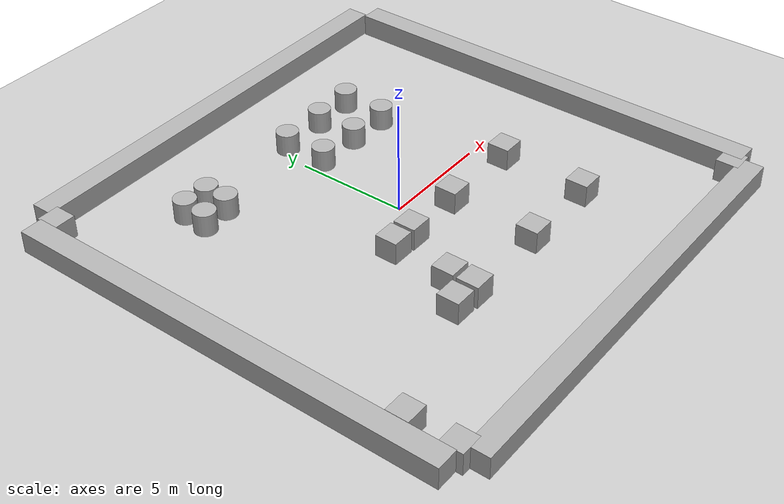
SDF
<?xml version="1.0"?>
<sdf version='1.10'>
  <world name='empty'>
    <physics name='1ms' type='ignored'>
      <max_step_size>0.001</max_step_size>
      <real_time_factor>1</real_time_factor>
      <real_time_update_rate>1000</real_time_update_rate>
    </physics>

    <plugin
      filename="gz-sim-physics-system"
      name="gz::sim::systems::Physics">
    </plugin>
    <plugin
      filename="gz-sim-user-commands-system"
      name="gz::sim::systems::UserCommands">
    </plugin>
    <plugin
      filename="gz-sim-scene-broadcaster-system"
      name="gz::sim::systems::SceneBroadcaster">
    </plugin>
    <plugin
      filename="gz-sim-sensors-system"
      name="gz::sim::systems::Sensors">
      <render_engine>ogre2</render_engine>
    </plugin>
    <plugin
      filename="gz-sim-imu-system"
      name="gz::sim::systems::Imu">
    </plugin>

    <gravity>0 0 -9.8000000000000007</gravity>
    <magnetic_field>5.5644999999999998e-06 2.2875799999999999e-05 -4.2388400000000002e-05</magnetic_field>
    <atmosphere type='adiabatic'/>
    <scene>
      <ambient>0.400000006 0.400000006 0.400000006 1</ambient>
      <background>0.699999988 0.699999988 0.699999988 1</background>
      <shadows>true</shadows>
    </scene>
    <model name='ground_plane'>
      <static>true</static>
      <link name='link'>
        <collision name='collision'>
          <geometry>
            <plane>
              <normal>0 0 1</normal>
              <size>100 100</size>
            </plane>
          </geometry>
          <surface>
            <friction>
              <ode/>
            </friction>
            <bounce/>
            <contact/>
          </surface>
        </collision>
        <visual name='visual'>
          <geometry>
            <plane>
              <normal>0 0 1</normal>
              <size>100 100</size>
            </plane>
          </geometry>
          <material>
            <ambient>0.800000012 0.800000012 0.800000012 1</ambient>
            <diffuse>0.800000012 0.800000012 0.800000012 1</diffuse>
            <specular>0.800000012 0.800000012 0.800000012 1</specular>
          </material>
        </visual>
        <pose>0 0 0 0 0 0</pose>
        <inertial>
          <pose>0 0 0 0 0 0</pose>
          <mass>1</mass>
          <inertia>
            <ixx>1</ixx>
            <ixy>0</ixy>
            <ixz>0</ixz>
            <iyy>1</iyy>
            <iyz>0</iyz>
            <izz>1</izz>
          </inertia>
        </inertial>
        <enable_wind>false</enable_wind>
      </link>
      <pose>0 0 0 0 0 0</pose>
      <self_collide>false</self_collide>
    </model>
    <model name='box'>
      <pose>10.804900169372559 -0.059269551187753677 0.5 0 0 0</pose>
      <link name='box_link'>
        <inertial>
          <inertia>
            <ixx>0.16666</ixx>
            <ixy>0</ixy>
            <ixz>0</ixz>
            <iyy>0.16666</iyy>
            <iyz>0</iyz>
            <izz>0.16666</izz>
          </inertia>
          <mass>1</mass>
          <pose>0 0 0 0 0 0</pose>
        </inertial>
        <collision name='box_collision'>
          <geometry>
            <box>
              <size>1 20 1</size>
            </box>
          </geometry>
          <surface>
            <friction>
              <ode/>
            </friction>
            <bounce/>
            <contact/>
          </surface>
        </collision>
        <visual name='box_visual'>
          <geometry>
            <box>
              <size>1 20 1</size>
            </box>
          </geometry>
          <material>
            <ambient>0.300000012 0.300000012 0.300000012 1</ambient>
            <diffuse>0.699999988 0.699999988 0.699999988 1</diffuse>
            <specular>1 1 1 1</specular>
          </material>
        </visual>
        <pose>0 0 0 0 0 0</pose>
        <enable_wind>false</enable_wind>
      </link>
      <static>false</static>
      <self_collide>false</self_collide>
    </model>
    <model name='box_0'>
      <pose>0.44352701306343079 10.491442680358887 0.5 0 0 0</pose>
      <link name='box_link'>
        <inertial>
          <inertia>
            <ixx>0.16666</ixx>
            <ixy>0</ixy>
            <ixz>0</ixz>
            <iyy>0.16666</iyy>
            <iyz>0</iyz>
            <izz>0.16666</izz>
          </inertia>
          <mass>1</mass>
          <pose>0 0 0 0 0 0</pose>
        </inertial>
        <collision name='box_collision'>
          <geometry>
            <box>
              <size>20 1 1</size>
            </box>
          </geometry>
          <surface>
            <friction>
              <ode/>
            </friction>
            <bounce/>
            <contact/>
          </surface>
        </collision>
        <visual name='box_visual'>
          <geometry>
            <box>
              <size>20 1 1</size>
            </box>
          </geometry>
          <material>
            <ambient>0.300000012 0.300000012 0.300000012 1</ambient>
            <diffuse>0.699999988 0.699999988 0.699999988 1</diffuse>
            <specular>1 1 1 1</specular>
          </material>
        </visual>
        <pose>0 0 0 0 0 0</pose>
        <enable_wind>false</enable_wind>
      </link>
      <static>false</static>
      <self_collide>false</self_collide>
    </model>
    <model name='box_1'>
      <pose>-10.50529956817627 0.023616543039679527 0.5 0 0 0</pose>
      <link name='box_link'>
        <inertial>
          <inertia>
            <ixx>0.16666</ixx>
            <ixy>0</ixy>
            <ixz>0</ixz>
            <iyy>0.16666</iyy>
            <iyz>0</iyz>
            <izz>0.16666</izz>
          </inertia>
          <mass>1</mass>
          <pose>0 0 0 0 0 0</pose>
        </inertial>
        <collision name='box_collision'>
          <geometry>
            <box>
              <size>1 20 1</size>
            </box>
          </geometry>
          <surface>
            <friction>
              <ode/>
            </friction>
            <bounce/>
            <contact/>
          </surface>
        </collision>
        <visual name='box_visual'>
          <geometry>
            <box>
              <size>1 20 1</size>
            </box>
          </geometry>
          <material>
            <ambient>0.300000012 0.300000012 0.300000012 1</ambient>
            <diffuse>0.699999988 0.699999988 0.699999988 1</diffuse>
            <specular>1 1 1 1</specular>
          </material>
        </visual>
        <pose>0 0 0 0 0 0</pose>
        <enable_wind>false</enable_wind>
      </link>
      <static>false</static>
      <self_collide>false</self_collide>
    </model>
    <model name='box_2'>
      <pose>0.34999698400497437 -10.544400215148926 0.5 0 0 0</pose>
      <link name='box_link'>
        <inertial>
          <inertia>
            <ixx>0.16666</ixx>
            <ixy>0</ixy>
            <ixz>0</ixz>
            <iyy>0.16666</iyy>
            <iyz>0</iyz>
            <izz>0.16666</izz>
          </inertia>
          <mass>1</mass>
          <pose>0 0 0 0 0 0</pose>
        </inertial>
        <collision name='box_collision'>
          <geometry>
            <box>
              <size>20 1 1</size>
            </box>
          </geometry>
          <surface>
            <friction>
              <ode/>
            </friction>
            <bounce/>
            <contact/>
          </surface>
        </collision>
        <visual name='box_visual'>
          <geometry>
            <box>
              <size>20 1 1</size>
            </box>
          </geometry>
          <material>
            <ambient>0.300000012 0.300000012 0.300000012 1</ambient>
            <diffuse>0.699999988 0.699999988 0.699999988 1</diffuse>
            <specular>1 1 1 1</specular>
          </material>
        </visual>
        <pose>0 0 0 0 0 0</pose>
        <enable_wind>false</enable_wind>
      </link>
      <static>false</static>
      <self_collide>false</self_collide>
    </model>
    <model name='cylinder'>
      <pose>4.5114862515551835 4.4341497072361955 0.5 0 0 0</pose>
      <link name='cylinder_link'>
        <inertial>
          <inertia>
            <ixx>0.14580000000000001</ixx>
            <ixy>0</ixy>
            <ixz>0</ixz>
            <iyy>0.14580000000000001</iyy>
            <iyz>0</iyz>
            <izz>0.125</izz>
          </inertia>
          <mass>1</mass>
          <pose>0 0 0 0 0 0</pose>
        </inertial>
        <collision name='cylinder_collision'>
          <geometry>
            <cylinder>
              <radius>0.5</radius>
              <length>1</length>
            </cylinder>
          </geometry>
          <surface>
            <friction>
              <ode/>
            </friction>
            <bounce/>
            <contact/>
          </surface>
        </collision>
        <visual name='cylinder_visual'>
          <geometry>
            <cylinder>
              <radius>0.5</radius>
              <length>1</length>
            </cylinder>
          </geometry>
          <material>
            <ambient>0.300000012 0.300000012 0.300000012 1</ambient>
            <diffuse>0.699999988 0.699999988 0.699999988 1</diffuse>
            <specular>1 1 1 1</specular>
          </material>
        </visual>
        <pose>0 0 0 0 0 0</pose>
        <enable_wind>false</enable_wind>
      </link>
      <static>false</static>
      <self_collide>false</self_collide>
    </model>
    <model name='cylinder_0'>
      <pose>2.6336253085964136 4.4780168126551381 0.5 0 0 0</pose>
      <link name='cylinder_link'>
        <inertial>
          <inertia>
            <ixx>0.14580000000000001</ixx>
            <ixy>0</ixy>
            <ixz>0</ixz>
            <iyy>0.14580000000000001</iyy>
            <iyz>0</iyz>
            <izz>0.125</izz>
          </inertia>
          <mass>1</mass>
          <pose>0 0 0 0 0 0</pose>
        </inertial>
        <collision name='cylinder_collision'>
          <geometry>
            <cylinder>
              <radius>0.5</radius>
              <length>1</length>
            </cylinder>
          </geometry>
          <surface>
            <friction>
              <ode/>
            </friction>
            <bounce/>
            <contact/>
          </surface>
        </collision>
        <visual name='cylinder_visual'>
          <geometry>
            <cylinder>
              <radius>0.5</radius>
              <length>1</length>
            </cylinder>
          </geometry>
          <material>
            <ambient>0.300000012 0.300000012 0.300000012 1</ambient>
            <diffuse>0.699999988 0.699999988 0.699999988 1</diffuse>
            <specular>1 1 1 1</specular>
          </material>
        </visual>
        <pose>0 0 0 0 0 0</pose>
        <enable_wind>false</enable_wind>
      </link>
      <static>false</static>
      <self_collide>false</self_collide>
    </model>
    <model name='cylinder_1'>
      <pose>0.57131256770883621 4.4664752769699581 0.5 0 0 0</pose>
      <link name='cylinder_link'>
        <inertial>
          <inertia>
            <ixx>0.14580000000000001</ixx>
            <ixy>0</ixy>
            <ixz>0</ixz>
            <iyy>0.14580000000000001</iyy>
            <iyz>0</iyz>
            <izz>0.125</izz>
          </inertia>
          <mass>1</mass>
          <pose>0 0 0 0 0 0</pose>
        </inertial>
        <collision name='cylinder_collision'>
          <geometry>
            <cylinder>
              <radius>0.5</radius>
              <length>1</length>
            </cylinder>
          </geometry>
          <surface>
            <friction>
              <ode/>
            </friction>
            <bounce/>
            <contact/>
          </surface>
        </collision>
        <visual name='cylinder_visual'>
          <geometry>
            <cylinder>
              <radius>0.5</radius>
              <length>1</length>
            </cylinder>
          </geometry>
          <material>
            <ambient>0.300000012 0.300000012 0.300000012 1</ambient>
            <diffuse>0.699999988 0.699999988 0.699999988 1</diffuse>
            <specular>1 1 1 1</specular>
          </material>
        </visual>
        <pose>0 0 0 0 0 0</pose>
        <enable_wind>false</enable_wind>
      </link>
      <static>false</static>
      <self_collide>false</self_collide>
    </model>
    <model name='box_3'>
      <pose>5.4239408886110976 -1.4765441809110369 0.5 0 0 0</pose>
      <link name='box_link'>
        <inertial>
          <inertia>
            <ixx>0.16666</ixx>
            <ixy>0</ixy>
            <ixz>0</ixz>
            <iyy>0.16666</iyy>
            <iyz>0</iyz>
            <izz>0.16666</izz>
          </inertia>
          <mass>1</mass>
          <pose>0 0 0 0 0 0</pose>
        </inertial>
        <collision name='box_collision'>
          <geometry>
            <box>
              <size>1 1 1</size>
            </box>
          </geometry>
          <surface>
            <friction>
              <ode/>
            </friction>
            <bounce/>
            <contact/>
          </surface>
        </collision>
        <visual name='box_visual'>
          <geometry>
            <box>
              <size>1 1 1</size>
            </box>
          </geometry>
          <material>
            <ambient>0.300000012 0.300000012 0.300000012 1</ambient>
            <diffuse>0.699999988 0.699999988 0.699999988 1</diffuse>
            <specular>1 1 1 1</specular>
          </material>
        </visual>
        <pose>0 0 0 0 0 0</pose>
        <enable_wind>false</enable_wind>
      </link>
      <static>false</static>
      <self_collide>false</self_collide>
    </model>
    <model name='box_4'>
      <pose>5.2229987225922869 -5.4526262986601779 0.5 0 0 0</pose>
      <link name='box_link'>
        <inertial>
          <inertia>
            <ixx>0.16666</ixx>
            <ixy>0</ixy>
            <ixz>0</ixz>
            <iyy>0.16666</iyy>
            <iyz>0</iyz>
            <izz>0.16666</izz>
          </inertia>
          <mass>1</mass>
          <pose>0 0 0 0 0 0</pose>
        </inertial>
        <collision name='box_collision'>
          <geometry>
            <box>
              <size>1 1 1</size>
            </box>
          </geometry>
          <surface>
            <friction>
              <ode/>
            </friction>
            <bounce/>
            <contact/>
          </surface>
        </collision>
        <visual name='box_visual'>
          <geometry>
            <box>
              <size>1 1 1</size>
            </box>
          </geometry>
          <material>
            <ambient>0.300000012 0.300000012 0.300000012 1</ambient>
            <diffuse>0.699999988 0.699999988 0.699999988 1</diffuse>
            <specular>1 1 1 1</specular>
          </material>
        </visual>
        <pose>0 0 0 0 0 0</pose>
        <enable_wind>false</enable_wind>
      </link>
      <static>false</static>
      <self_collide>false</self_collide>
    </model>
    <model name='box_5'>
      <pose>1.6081250772311142 -1.4862432354188719 0.5 0 0 0</pose>
      <link name='box_link'>
        <inertial>
          <inertia>
            <ixx>0.16666</ixx>
            <ixy>0</ixy>
            <ixz>0</ixz>
            <iyy>0.16666</iyy>
            <iyz>0</iyz>
            <izz>0.16666</izz>
          </inertia>
          <mass>1</mass>
          <pose>0 0 0 0 0 0</pose>
        </inertial>
        <collision name='box_collision'>
          <geometry>
            <box>
              <size>1 1 1</size>
            </box>
          </geometry>
          <surface>
            <friction>
              <ode/>
            </friction>
            <bounce/>
            <contact/>
          </surface>
        </collision>
        <visual name='box_visual'>
          <geometry>
            <box>
              <size>1 1 1</size>
            </box>
          </geometry>
          <material>
            <ambient>0.300000012 0.300000012 0.300000012 1</ambient>
            <diffuse>0.699999988 0.699999988 0.699999988 1</diffuse>
            <specular>1 1 1 1</specular>
          </material>
        </visual>
        <pose>0 0 0 0 0 0</pose>
        <enable_wind>false</enable_wind>
      </link>
      <static>false</static>
      <self_collide>false</self_collide>
    </model>
    <model name='box_6'>
      <pose>1.4646984203689586 -5.4922550758311948 0.5 0 0 0</pose>
      <link name='box_link'>
        <inertial>
          <inertia>
            <ixx>0.16666</ixx>
            <ixy>0</ixy>
            <ixz>0</ixz>
            <iyy>0.16666</iyy>
            <iyz>0</iyz>
            <izz>0.16666</izz>
          </inertia>
          <mass>1</mass>
          <pose>0 0 0 0 0 0</pose>
        </inertial>
        <collision name='box_collision'>
          <geometry>
            <box>
              <size>1 1 1</size>
            </box>
          </geometry>
          <surface>
            <friction>
              <ode/>
            </friction>
            <bounce/>
            <contact/>
          </surface>
        </collision>
        <visual name='box_visual'>
          <geometry>
            <box>
              <size>1 1 1</size>
            </box>
          </geometry>
          <material>
            <ambient>0.300000012 0.300000012 0.300000012 1</ambient>
            <diffuse>0.699999988 0.699999988 0.699999988 1</diffuse>
            <specular>1 1 1 1</specular>
          </material>
        </visual>
        <pose>0 0 0 0 0 0</pose>
        <enable_wind>false</enable_wind>
      </link>
      <static>false</static>
      <self_collide>false</self_collide>
    </model>
    <model name='cylinder_2'>
      <pose>4.6148843608581132 6.5252981384759003 0.5 0 0 0</pose>
      <link name='cylinder_link'>
        <inertial>
          <inertia>
            <ixx>0.14580000000000001</ixx>
            <ixy>0</ixy>
            <ixz>0</ixz>
            <iyy>0.14580000000000001</iyy>
            <iyz>0</iyz>
            <izz>0.125</izz>
          </inertia>
          <mass>1</mass>
          <pose>0 0 0 0 0 0</pose>
        </inertial>
        <collision name='cylinder_collision'>
          <geometry>
            <cylinder>
              <radius>0.5</radius>
              <length>1</length>
            </cylinder>
          </geometry>
          <surface>
            <friction>
              <ode/>
            </friction>
            <bounce/>
            <contact/>
          </surface>
        </collision>
        <visual name='cylinder_visual'>
          <geometry>
            <cylinder>
              <radius>0.5</radius>
              <length>1</length>
            </cylinder>
          </geometry>
          <material>
            <ambient>0.300000012 0.300000012 0.300000012 1</ambient>
            <diffuse>0.699999988 0.699999988 0.699999988 1</diffuse>
            <specular>1 1 1 1</specular>
          </material>
        </visual>
        <pose>0 0 0 0 0 0</pose>
        <enable_wind>false</enable_wind>
      </link>
      <static>false</static>
      <self_collide>false</self_collide>
    </model>
    <model name='cylinder_3'>
      <pose>2.6766172440487068 6.4377392202166783 0.5 0 0 0</pose>
      <link name='cylinder_link'>
        <inertial>
          <inertia>
            <ixx>0.14580000000000001</ixx>
            <ixy>0</ixy>
            <ixz>0</ixz>
            <iyy>0.14580000000000001</iyy>
            <iyz>0</iyz>
            <izz>0.125</izz>
          </inertia>
          <mass>1</mass>
          <pose>0 0 0 0 0 0</pose>
        </inertial>
        <collision name='cylinder_collision'>
          <geometry>
            <cylinder>
              <radius>0.5</radius>
              <length>1</length>
            </cylinder>
          </geometry>
          <surface>
            <friction>
              <ode/>
            </friction>
            <bounce/>
            <contact/>
          </surface>
        </collision>
        <visual name='cylinder_visual'>
          <geometry>
            <cylinder>
              <radius>0.5</radius>
              <length>1</length>
            </cylinder>
          </geometry>
          <material>
            <ambient>0.300000012 0.300000012 0.300000012 1</ambient>
            <diffuse>0.699999988 0.699999988 0.699999988 1</diffuse>
            <specular>1 1 1 1</specular>
          </material>
        </visual>
        <pose>0 0 0 0 0 0</pose>
        <enable_wind>false</enable_wind>
      </link>
      <static>false</static>
      <self_collide>false</self_collide>
    </model>
    <model name='cylinder_4'>
      <pose>0.50355414648937558 6.4028507055486541 0.5 0 0 0</pose>
      <link name='cylinder_link'>
        <inertial>
          <inertia>
            <ixx>0.14580000000000001</ixx>
            <ixy>0</ixy>
            <ixz>0</ixz>
            <iyy>0.14580000000000001</iyy>
            <iyz>0</iyz>
            <izz>0.125</izz>
          </inertia>
          <mass>1</mass>
          <pose>0 0 0 0 0 0</pose>
        </inertial>
        <collision name='cylinder_collision'>
          <geometry>
            <cylinder>
              <radius>0.5</radius>
              <length>1</length>
            </cylinder>
          </geometry>
          <surface>
            <friction>
              <ode/>
            </friction>
            <bounce/>
            <contact/>
          </surface>
        </collision>
        <visual name='cylinder_visual'>
          <geometry>
            <cylinder>
              <radius>0.5</radius>
              <length>1</length>
            </cylinder>
          </geometry>
          <material>
            <ambient>0.300000012 0.300000012 0.300000012 1</ambient>
            <diffuse>0.699999988 0.699999988 0.699999988 1</diffuse>
            <specular>1 1 1 1</specular>
          </material>
        </visual>
        <pose>0 0 0 0 0 0</pose>
        <enable_wind>false</enable_wind>
      </link>
      <static>false</static>
      <self_collide>false</self_collide>
    </model>
    <model name='box_7'>
      <pose>-1.2519962737551835 -1.5704847091715162 0.5 0 0 0</pose>
      <link name='box_link'>
        <inertial>
          <inertia>
            <ixx>0.16666</ixx>
            <ixy>0</ixy>
            <ixz>0</ixz>
            <iyy>0.16666</iyy>
            <iyz>0</iyz>
            <izz>0.16666</izz>
          </inertia>
          <mass>1</mass>
          <pose>0 0 0 0 0 0</pose>
        </inertial>
        <collision name='box_collision'>
          <geometry>
            <box>
              <size>1 1 1</size>
            </box>
          </geometry>
          <surface>
            <friction>
              <ode/>
            </friction>
            <bounce/>
            <contact/>
          </surface>
        </collision>
        <visual name='box_visual'>
          <geometry>
            <box>
              <size>1 1 1</size>
            </box>
          </geometry>
          <material>
            <ambient>0.300000012 0.300000012 0.300000012 1</ambient>
            <diffuse>0.699999988 0.699999988 0.699999988 1</diffuse>
            <specular>1 1 1 1</specular>
          </material>
        </visual>
        <pose>0 0 0 0 0 0</pose>
        <enable_wind>false</enable_wind>
      </link>
      <static>false</static>
      <self_collide>false</self_collide>
    </model>
    <model name='box_8'>
      <pose>-2.380297730908747 -1.5396613918136108 0.5 0 0 0</pose>
      <link name='box_link'>
        <inertial>
          <inertia>
            <ixx>0.16666</ixx>
            <ixy>0</ixy>
            <ixz>0</ixz>
            <iyy>0.16666</iyy>
            <iyz>0</iyz>
            <izz>0.16666</izz>
          </inertia>
          <mass>1</mass>
          <pose>0 0 0 0 0 0</pose>
        </inertial>
        <collision name='box_collision'>
          <geometry>
            <box>
              <size>1 1 1</size>
            </box>
          </geometry>
          <surface>
            <friction>
              <ode/>
            </friction>
            <bounce/>
            <contact/>
          </surface>
        </collision>
        <visual name='box_visual'>
          <geometry>
            <box>
              <size>1 1 1</size>
            </box>
          </geometry>
          <material>
            <ambient>0.300000012 0.300000012 0.300000012 1</ambient>
            <diffuse>0.699999988 0.699999988 0.699999988 1</diffuse>
            <specular>1 1 1 1</specular>
          </material>
        </visual>
        <pose>0 0 0 0 0 0</pose>
        <enable_wind>false</enable_wind>
      </link>
      <static>false</static>
      <self_collide>false</self_collide>
    </model>
    <model name='box_9'>
      <pose>-2.5730367563942531 -5.510048327989483 0.5 0 0 0</pose>
      <link name='box_link'>
        <inertial>
          <inertia>
            <ixx>0.16666</ixx>
            <ixy>0</ixy>
            <ixz>0</ixz>
            <iyy>0.16666</iyy>
            <iyz>0</iyz>
            <izz>0.16666</izz>
          </inertia>
          <mass>1</mass>
          <pose>0 0 0 0 0 0</pose>
        </inertial>
        <collision name='box_collision'>
          <geometry>
            <box>
              <size>1 1 1</size>
            </box>
          </geometry>
          <surface>
            <friction>
              <ode/>
            </friction>
            <bounce/>
            <contact/>
          </surface>
        </collision>
        <visual name='box_visual'>
          <geometry>
            <box>
              <size>1 1 1</size>
            </box>
          </geometry>
          <material>
            <ambient>0.300000012 0.300000012 0.300000012 1</ambient>
            <diffuse>0.699999988 0.699999988 0.699999988 1</diffuse>
            <specular>1 1 1 1</specular>
          </material>
        </visual>
        <pose>0 0 0 0 0 0</pose>
        <enable_wind>false</enable_wind>
      </link>
      <static>false</static>
      <self_collide>false</self_collide>
    </model>
    <model name='box_10'>
      <pose>-3.7392946390883814 -5.4518000137597484 0.5 0 0 0</pose>
      <link name='box_link'>
        <inertial>
          <inertia>
            <ixx>0.16666</ixx>
            <ixy>0</ixy>
            <ixz>0</ixz>
            <iyy>0.16666</iyy>
            <iyz>0</iyz>
            <izz>0.16666</izz>
          </inertia>
          <mass>1</mass>
          <pose>0 0 0 0 0 0</pose>
        </inertial>
        <collision name='box_collision'>
          <geometry>
            <box>
              <size>1 1 1</size>
            </box>
          </geometry>
          <surface>
            <friction>
              <ode/>
            </friction>
            <bounce/>
            <contact/>
          </surface>
        </collision>
        <visual name='box_visual'>
          <geometry>
            <box>
              <size>1 1 1</size>
            </box>
          </geometry>
          <material>
            <ambient>0.300000012 0.300000012 0.300000012 1</ambient>
            <diffuse>0.699999988 0.699999988 0.699999988 1</diffuse>
            <specular>1 1 1 1</specular>
          </material>
        </visual>
        <pose>0 0 0 0 0 0</pose>
        <enable_wind>false</enable_wind>
      </link>
      <static>false</static>
      <self_collide>false</self_collide>
    </model>
    <model name='box_11'>
      <pose>-2.5480790715485839 -4.3445794997608758 0.5 0 0 0</pose>
      <link name='box_link'>
        <inertial>
          <inertia>
            <ixx>0.16666</ixx>
            <ixy>0</ixy>
            <ixz>0</ixz>
            <iyy>0.16666</iyy>
            <iyz>0</iyz>
            <izz>0.16666</izz>
          </inertia>
          <mass>1</mass>
          <pose>0 0 0 0 0 0</pose>
        </inertial>
        <collision name='box_collision'>
          <geometry>
            <box>
              <size>1 1 1</size>
            </box>
          </geometry>
          <surface>
            <friction>
              <ode/>
            </friction>
            <bounce/>
            <contact/>
          </surface>
        </collision>
        <visual name='box_visual'>
          <geometry>
            <box>
              <size>1 1 1</size>
            </box>
          </geometry>
          <material>
            <ambient>0.300000012 0.300000012 0.300000012 1</ambient>
            <diffuse>0.699999988 0.699999988 0.699999988 1</diffuse>
            <specular>1 1 1 1</specular>
          </material>
        </visual>
        <pose>0 0 0 0 0 0</pose>
        <enable_wind>false</enable_wind>
      </link>
      <static>false</static>
      <self_collide>false</self_collide>
    </model>
    <model name='cylinder_5'>
      <pose>-4.4238179106388422 6.479395289206721 0.5 0 0 0</pose>
      <link name='cylinder_link'>
        <inertial>
          <inertia>
            <ixx>0.14580000000000001</ixx>
            <ixy>0</ixy>
            <ixz>0</ixz>
            <iyy>0.14580000000000001</iyy>
            <iyz>0</iyz>
            <izz>0.125</izz>
          </inertia>
          <mass>1</mass>
          <pose>0 0 0 0 0 0</pose>
        </inertial>
        <collision name='cylinder_collision'>
          <geometry>
            <cylinder>
              <radius>0.5</radius>
              <length>1</length>
            </cylinder>
          </geometry>
          <surface>
            <friction>
              <ode/>
            </friction>
            <bounce/>
            <contact/>
          </surface>
        </collision>
        <visual name='cylinder_visual'>
          <geometry>
            <cylinder>
              <radius>0.5</radius>
              <length>1</length>
            </cylinder>
          </geometry>
          <material>
            <ambient>0.300000012 0.300000012 0.300000012 1</ambient>
            <diffuse>0.699999988 0.699999988 0.699999988 1</diffuse>
            <specular>1 1 1 1</specular>
          </material>
        </visual>
        <pose>0 0 0 0 0 0</pose>
        <enable_wind>false</enable_wind>
      </link>
      <static>false</static>
      <self_collide>false</self_collide>
    </model>
    <model name='cylinder_6'>
      <pose>-4.3948015785831274 5.4327262033419608 0.5 0 0 0</pose>
      <link name='cylinder_link'>
        <inertial>
          <inertia>
            <ixx>0.14580000000000001</ixx>
            <ixy>0</ixy>
            <ixz>0</ixz>
            <iyy>0.14580000000000001</iyy>
            <iyz>0</iyz>
            <izz>0.125</izz>
          </inertia>
          <mass>1</mass>
          <pose>0 0 0 0 0 0</pose>
        </inertial>
        <collision name='cylinder_collision'>
          <geometry>
            <cylinder>
              <radius>0.5</radius>
              <length>1</length>
            </cylinder>
          </geometry>
          <surface>
            <friction>
              <ode/>
            </friction>
            <bounce/>
            <contact/>
          </surface>
        </collision>
        <visual name='cylinder_visual'>
          <geometry>
            <cylinder>
              <radius>0.5</radius>
              <length>1</length>
            </cylinder>
          </geometry>
          <material>
            <ambient>0.300000012 0.300000012 0.300000012 1</ambient>
            <diffuse>0.699999988 0.699999988 0.699999988 1</diffuse>
            <specular>1 1 1 1</specular>
          </material>
        </visual>
        <pose>0 0 0 0 0 0</pose>
        <enable_wind>false</enable_wind>
      </link>
      <static>false</static>
      <self_collide>false</self_collide>
    </model>
    <model name='cylinder_7'>
      <pose>-5.6140082448678523 6.5106213966481938 0.5 0 0 0</pose>
      <link name='cylinder_link'>
        <inertial>
          <inertia>
            <ixx>0.14580000000000001</ixx>
            <ixy>0</ixy>
            <ixz>0</ixz>
            <iyy>0.14580000000000001</iyy>
            <iyz>0</iyz>
            <izz>0.125</izz>
          </inertia>
          <mass>1</mass>
          <pose>0 0 0 0 0 0</pose>
        </inertial>
        <collision name='cylinder_collision'>
          <geometry>
            <cylinder>
              <radius>0.5</radius>
              <length>1</length>
            </cylinder>
          </geometry>
          <surface>
            <friction>
              <ode/>
            </friction>
            <bounce/>
            <contact/>
          </surface>
        </collision>
        <visual name='cylinder_visual'>
          <geometry>
            <cylinder>
              <radius>0.5</radius>
              <length>1</length>
            </cylinder>
          </geometry>
          <material>
            <ambient>0.300000012 0.300000012 0.300000012 1</ambient>
            <diffuse>0.699999988 0.699999988 0.699999988 1</diffuse>
            <specular>1 1 1 1</specular>
          </material>
        </visual>
        <pose>0 0 0 0 0 0</pose>
        <enable_wind>false</enable_wind>
      </link>
      <static>false</static>
      <self_collide>false</self_collide>
    </model>
    <model name='cylinder_8'>
      <pose>-5.6901468699718611 5.366494925025127 0.5 0 0 0</pose>
      <link name='cylinder_link'>
        <inertial>
          <inertia>
            <ixx>0.14580000000000001</ixx>
            <ixy>0</ixy>
            <ixz>0</ixz>
            <iyy>0.14580000000000001</iyy>
            <iyz>0</iyz>
            <izz>0.125</izz>
          </inertia>
          <mass>1</mass>
          <pose>0 0 0 0 0 0</pose>
        </inertial>
        <collision name='cylinder_collision'>
          <geometry>
            <cylinder>
              <radius>0.5</radius>
              <length>1</length>
            </cylinder>
          </geometry>
          <surface>
            <friction>
              <ode/>
            </friction>
            <bounce/>
            <contact/>
          </surface>
        </collision>
        <visual name='cylinder_visual'>
          <geometry>
            <cylinder>
              <radius>0.5</radius>
              <length>1</length>
            </cylinder>
          </geometry>
          <material>
            <ambient>0.300000012 0.300000012 0.300000012 1</ambient>
            <diffuse>0.699999988 0.699999988 0.699999988 1</diffuse>
            <specular>1 1 1 1</specular>
          </material>
        </visual>
        <pose>0 0 0 0 0 0</pose>
        <enable_wind>false</enable_wind>
      </link>
      <static>false</static>
      <self_collide>false</self_collide>
    </model>
    <model name='box_12'>
      <pose>-9.5450543804241725 -9.7563234337353695 0.5 0 0 0</pose>
      <link name='box_link'>
        <inertial>
          <inertia>
            <ixx>0.16666</ixx>
            <ixy>0</ixy>
            <ixz>0</ixz>
            <iyy>0.16666</iyy>
            <iyz>0</iyz>
            <izz>0.16666</izz>
          </inertia>
          <mass>1</mass>
          <pose>0 0 0 0 0 0</pose>
        </inertial>
        <collision name='box_collision'>
          <geometry>
            <box>
              <size>1 1 1</size>
            </box>
          </geometry>
          <surface>
            <friction>
              <ode/>
            </friction>
            <bounce/>
            <contact/>
          </surface>
        </collision>
        <visual name='box_visual'>
          <geometry>
            <box>
              <size>1 1 1</size>
            </box>
          </geometry>
          <material>
            <ambient>0.300000012 0.300000012 0.300000012 1</ambient>
            <diffuse>0.699999988 0.699999988 0.699999988 1</diffuse>
            <specular>1 1 1 1</specular>
          </material>
        </visual>
        <pose>0 0 0 0 0 0</pose>
        <enable_wind>false</enable_wind>
      </link>
      <static>false</static>
      <self_collide>false</self_collide>
    </model>
    <model name='box_13'>
      <pose>10.139179893050848 -9.7156212589088575 0.5 0 0 0</pose>
      <link name='box_link'>
        <inertial>
          <inertia>
            <ixx>0.16666</ixx>
            <ixy>0</ixy>
            <ixz>0</ixz>
            <iyy>0.16666</iyy>
            <iyz>0</iyz>
            <izz>0.16666</izz>
          </inertia>
          <mass>1</mass>
          <pose>0 0 0 0 0 0</pose>
        </inertial>
        <collision name='box_collision'>
          <geometry>
            <box>
              <size>1 1 1</size>
            </box>
          </geometry>
          <surface>
            <friction>
              <ode/>
            </friction>
            <bounce/>
            <contact/>
          </surface>
        </collision>
        <visual name='box_visual'>
          <geometry>
            <box>
              <size>1 1 1</size>
            </box>
          </geometry>
          <material>
            <ambient>0.300000012 0.300000012 0.300000012 1</ambient>
            <diffuse>0.699999988 0.699999988 0.699999988 1</diffuse>
            <specular>1 1 1 1</specular>
          </material>
        </visual>
        <pose>0 0 0 0 0 0</pose>
        <enable_wind>false</enable_wind>
      </link>
      <static>false</static>
      <self_collide>false</self_collide>
    </model>
    <model name='box_14'>
      <pose>-9.4963381885619285 -7.5142640586946143 0.5 0 0 0</pose>
      <link name='box_link'>
        <inertial>
          <inertia>
            <ixx>0.16666</ixx>
            <ixy>0</ixy>
            <ixz>0</ixz>
            <iyy>0.16666</iyy>
            <iyz>0</iyz>
            <izz>0.16666</izz>
          </inertia>
          <mass>1</mass>
          <pose>0 0 0 0 0 0</pose>
        </inertial>
        <collision name='box_collision'>
          <geometry>
            <box>
              <size>1 1 1</size>
            </box>
          </geometry>
          <surface>
            <friction>
              <ode/>
            </friction>
            <bounce/>
            <contact/>
          </surface>
        </collision>
        <visual name='box_visual'>
          <geometry>
            <box>
              <size>1 1 1</size>
            </box>
          </geometry>
          <material>
            <ambient>0.300000012 0.300000012 0.300000012 1</ambient>
            <diffuse>0.699999988 0.699999988 0.699999988 1</diffuse>
            <specular>1 1 1 1</specular>
          </material>
        </visual>
        <pose>0 0 0 0 0 0</pose>
        <enable_wind>false</enable_wind>
      </link>
      <static>false</static>
      <self_collide>false</self_collide>
    </model>
    <model name='box_15'>
      <pose>-9.5688384252458505 9.6425216569696488 0.5 0 0 0</pose>
      <link name='box_link'>
        <inertial>
          <inertia>
            <ixx>0.16666</ixx>
            <ixy>0</ixy>
            <ixz>0</ixz>
            <iyy>0.16666</iyy>
            <iyz>0</iyz>
            <izz>0.16666</izz>
          </inertia>
          <mass>1</mass>
          <pose>0 0 0 0 0 0</pose>
        </inertial>
        <collision name='box_collision'>
          <geometry>
            <box>
              <size>1 1 1</size>
            </box>
          </geometry>
          <surface>
            <friction>
              <ode/>
            </friction>
            <bounce/>
            <contact/>
          </surface>
        </collision>
        <visual name='box_visual'>
          <geometry>
            <box>
              <size>1 1 1</size>
            </box>
          </geometry>
          <material>
            <ambient>0.300000012 0.300000012 0.300000012 1</ambient>
            <diffuse>0.699999988 0.699999988 0.699999988 1</diffuse>
            <specular>1 1 1 1</specular>
          </material>
        </visual>
        <pose>0 0 0 0 0 0</pose>
        <enable_wind>false</enable_wind>
      </link>
      <static>false</static>
      <self_collide>false</self_collide>
    </model>
    <light name='sun' type='directional'>
      <pose>0 0 10 0 0 0</pose>
      <cast_shadows>true</cast_shadows>
      <intensity>1</intensity>
      <direction>-0.5 0.10000000000000001 -0.90000000000000002</direction>
      <diffuse>0.800000012 0.800000012 0.800000012 1</diffuse>
      <specular>0.200000003 0.200000003 0.200000003 1</specular>
      <attenuation>
        <range>1000</range>
        <linear>0.01</linear>
        <constant>0.90000000000000002</constant>
        <quadratic>0.001</quadratic>
      </attenuation>
      <spot>
        <inner_angle>0</inner_angle>
        <outer_angle>0</outer_angle>
        <falloff>0</falloff>
      </spot>
    </light>
  </world>
</sdf>
